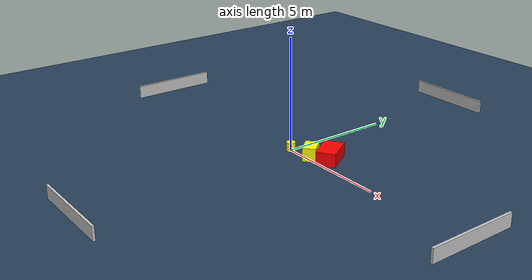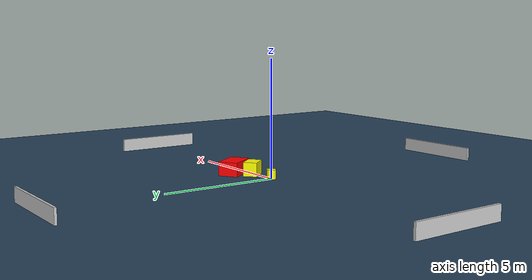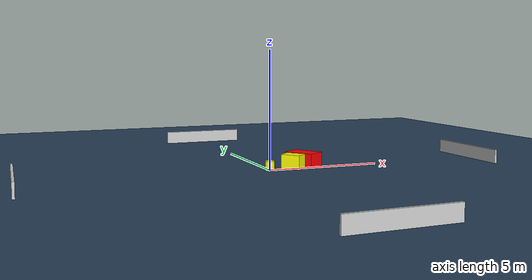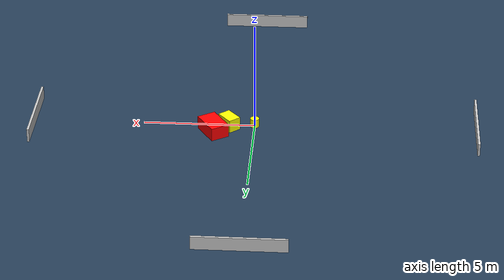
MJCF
<?xml version="1.0" ?>
<mujoco model="generated_environment">
  <option timestep="0.01" integrator="RK4" cone="elliptic"/>
  <default>
    <geom density="1"/>
  </default>
  <asset>
    <texture builtin="gradient" height="3072" name="skybox" rgb1="0.3 0.5 0.7" rgb2="0 0 0" type="skybox" width="512"/>
    <texture builtin="checker" height="300" name="groundplane" rgb1="0.2 0.3 0.4" rgb2="0.1 0.2 0.3" type="2d" width="300"/>
    <material name="groundplane" reflectance="0.2" texrepeat="5 5" texture="groundplane"/>
  </asset>
  <worldbody>
    <light dir="0 0 -1" directional="true" pos="0 0 1.5"/>
    <geom condim="3" friction="0.5 0.005 0.001" material="groundplane" name="floor" pos="0 0 0" size="0 0 0.05" type="plane"/>
    <body name="walls">
      <geom name="wall_1" condim="4" pos="-10.0 0.0 0.3" rgba="0.800000011920929 0.800000011920929 0.800000011920929 1.0" size="0.05 2.0 0.3" type="box"/>
      <geom name="wall_2" condim="4" pos="10.0 0.0 0.3" rgba="0.800000011920929 0.800000011920929 0.800000011920929 1.0" size="0.05 2.0 0.3" type="box"/>
      <geom name="wall_3" condim="4" pos="0.0 -10.0 0.3" rgba="0.800000011920929 0.800000011920929 0.800000011920929 1.0" size="2.0 0.05 0.3" type="box"/>
      <geom name="wall_4" condim="4" pos="0.0 10.0 0.3" rgba="0.800000011920929 0.800000011920929 0.800000011920929 1.0" size="2.0 0.05 0.3" type="box"/>
    </body>
    <body name="robot">
      <joint name="joint_x" type="slide" pos="0 0 0" axis="1 0 0"/>
      <joint name="joint_y" type="slide" pos="0 0 0" axis="0 1 0"/>
      <geom name="robot" type="cylinder" pos="0.0 0.0 0.2" size="0.2 0.2 0.0" mass="5.0" friction="1.0 0.005 0.0001" condim="4" rgba="1.0 1.0 0.0 1.0"/>
    </body>
    <body name="obstacle_1_movable">
      <geom name="obstacle_1_movable" condim="4" pos="1.138852003941784 0.1716654832953957 0.3" euler="0 0 40.44376344063675" friction="0.0 0.005 0.001" rgba="1.0 1.0 0.0 1.0" size="0.2947331651953328 0.42092552492508484 0.3" type="box" mass="0.1"/>
      <joint type="free"/>
    </body>
    <body name="obstacle_2_static">
      <geom name="obstacle_2_static" condim="4" pos="1.830724190168117 0.6569441264738983 0.3" euler="0 0 212.68687175335373" friction="0.0 0.005 0.001" rgba="1.0 0.0 0.0 1.0" size="0.4299833175751506 0.6683215196564879 0.3" type="box"/>
    </body>
  </worldbody>
  <actuator>
    <motor name="actuator_x" joint="joint_x" gear="1" ctrlrange="-1 1"/>
    <motor name="actuator_y" joint="joint_y" gear="1" ctrlrange="-1 1"/>
  </actuator>
</mujoco>
